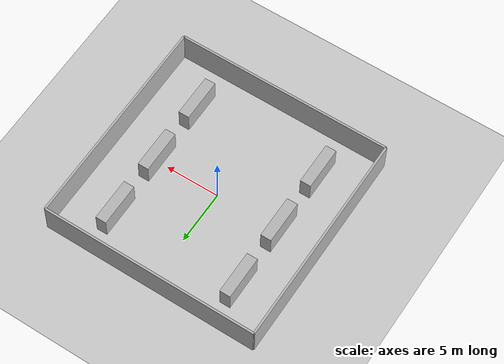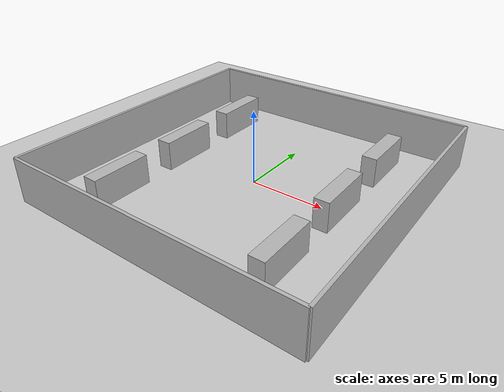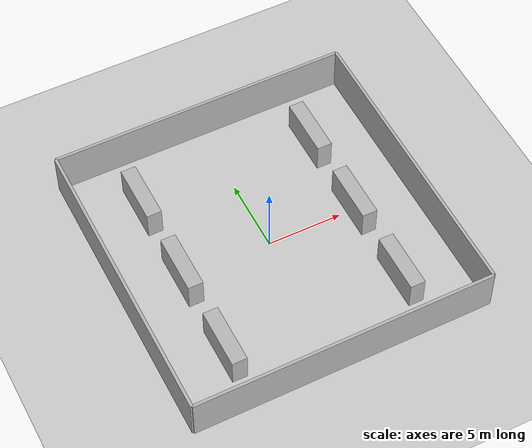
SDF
<?xml version="1.0"?>
<sdf version="1.6">
  <world name="warehouse">
    <physics type="ode">
      <real_time_update_rate>1000.0</real_time_update_rate>
      <max_step_size>0.001</max_step_size>
    </physics>
    <include><uri>model://sun</uri></include>
    <include><uri>model://ground_plane</uri></include>
    <model name="wall_n"><static>true</static><pose>0 10 1.5 0 0 0</pose>
      <link name="link"><collision name="c"><geometry><box><size>20 0.2 3</size></box></geometry></collision>
      <visual name="v"><geometry><box><size>20 0.2 3</size></box></geometry></visual></link></model>
    <model name="wall_s"><static>true</static><pose>0 -10 1.5 0 0 0</pose>
      <link name="link"><collision name="c"><geometry><box><size>20 0.2 3</size></box></geometry></collision>
      <visual name="v"><geometry><box><size>20 0.2 3</size></box></geometry></visual></link></model>
    <model name="wall_e"><static>true</static><pose>10 0 1.5 0 0 0</pose>
      <link name="link"><collision name="c"><geometry><box><size>0.2 20 3</size></box></geometry></collision>
      <visual name="v"><geometry><box><size>0.2 20 3</size></box></geometry></visual></link></model>
    <model name="wall_w"><static>true</static><pose>-10 0 1.5 0 0 0</pose>
      <link name="link"><collision name="c"><geometry><box><size>0.2 20 3</size></box></geometry></collision>
      <visual name="v"><geometry><box><size>0.2 20 3</size></box></geometry></visual></link></model>
    <model name="shelf_1"><static>true</static><pose>-6 6 1 0 0 0</pose>
      <link name="link"><collision name="c"><geometry><box><size>1 4 2</size></box></geometry></collision>
      <visual name="v"><geometry><box><size>1 4 2</size></box></geometry></visual></link></model>
    <model name="shelf_2"><static>true</static><pose>-6 0 1 0 0 0</pose>
      <link name="link"><collision name="c"><geometry><box><size>1 4 2</size></box></geometry></collision>
      <visual name="v"><geometry><box><size>1 4 2</size></box></geometry></visual></link></model>
    <model name="shelf_3"><static>true</static><pose>-6 -6 1 0 0 0</pose>
      <link name="link"><collision name="c"><geometry><box><size>1 4 2</size></box></geometry></collision>
      <visual name="v"><geometry><box><size>1 4 2</size></box></geometry></visual></link></model>
    <model name="shelf_4"><static>true</static><pose>6 6 1 0 0 0</pose>
      <link name="link"><collision name="c"><geometry><box><size>1 4 2</size></box></geometry></collision>
      <visual name="v"><geometry><box><size>1 4 2</size></box></geometry></visual></link></model>
    <model name="shelf_5"><static>true</static><pose>6 0 1 0 0 0</pose>
      <link name="link"><collision name="c"><geometry><box><size>1 4 2</size></box></geometry></collision>
      <visual name="v"><geometry><box><size>1 4 2</size></box></geometry></visual></link></model>
    <model name="shelf_6"><static>true</static><pose>6 -6 1 0 0 0</pose>
      <link name="link"><collision name="c"><geometry><box><size>1 4 2</size></box></geometry></collision>
      <visual name="v"><geometry><box><size>1 4 2</size></box></geometry></visual></link></model>
  </world>
</sdf>
